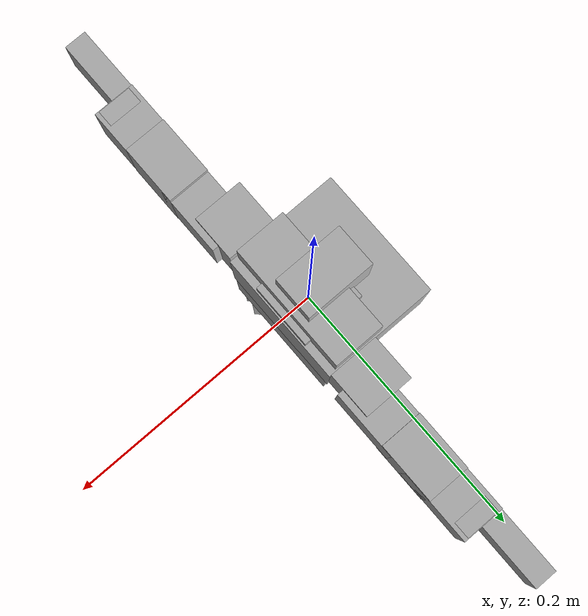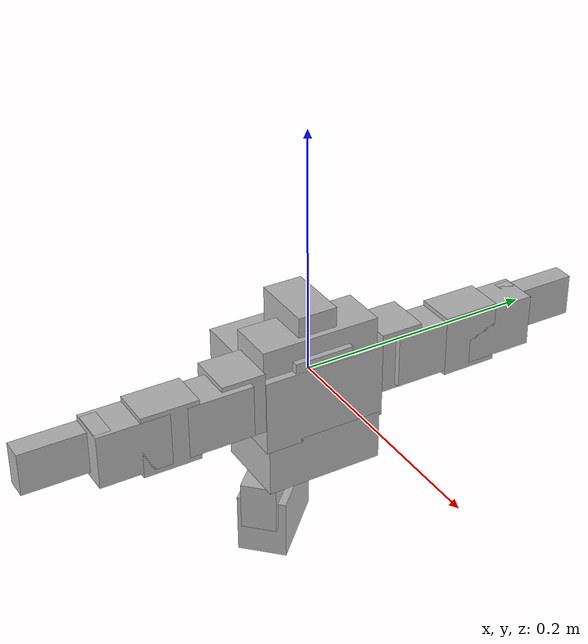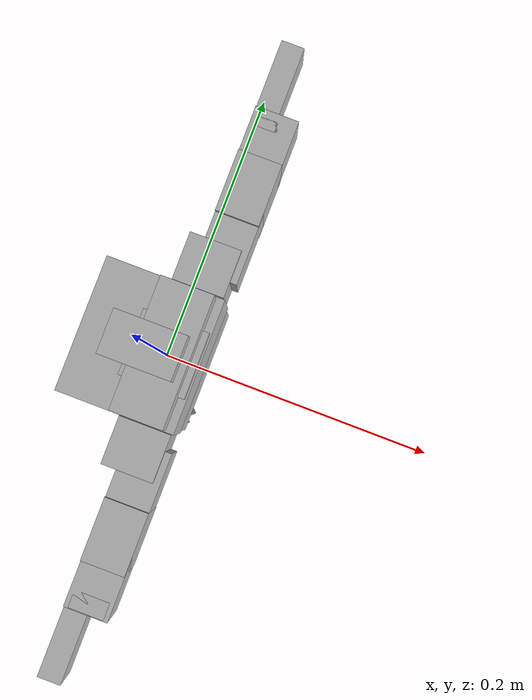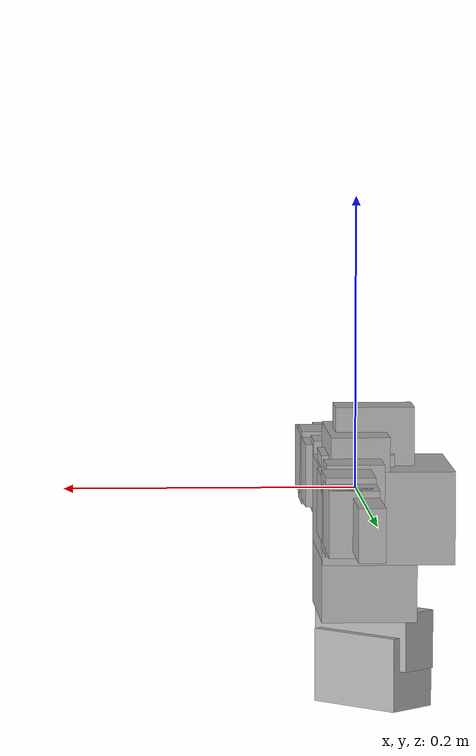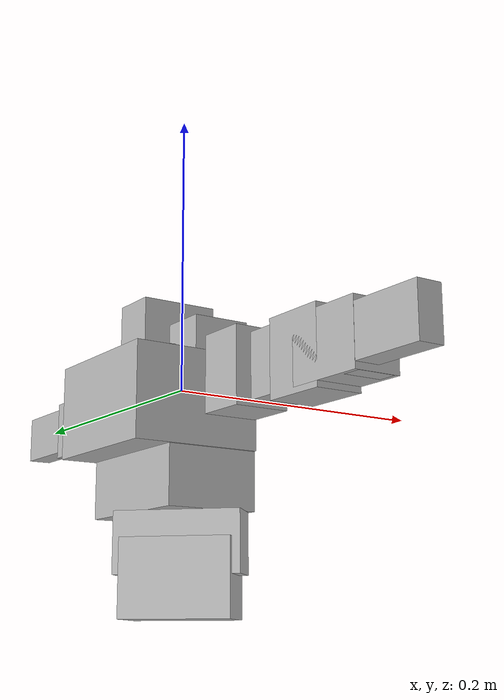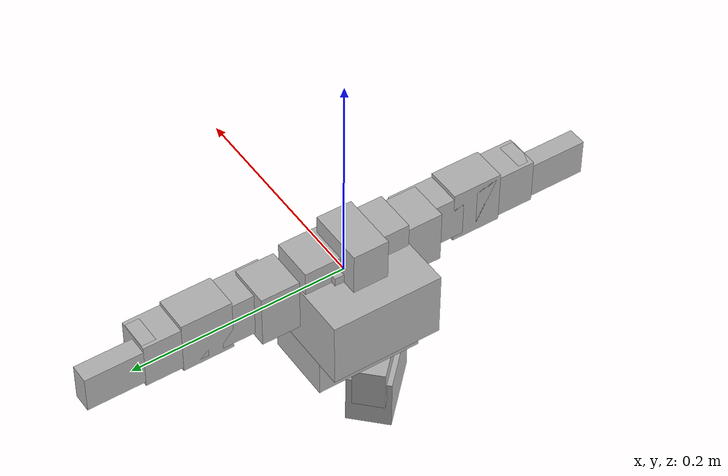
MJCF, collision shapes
<mujoco model="typea">
  <compiler angle="radian" meshdir="assets" coordinate="local"/>

  <asset>
    <mesh name="8b120736_BPF-CHEST-F_FCD-Conv_BDR-Col" file="8b120736_BPF-CHEST-F_FCD-Conv_BDR-Col.stl" scale="0.001 0.001 0.001" />
    <mesh name="94afeb60_BPF-CHEST-B_FCD-Conv_BDR-Col" file="94afeb60_BPF-CHEST-B_FCD-Conv_BDR-Col.stl" scale="0.001 0.001 0.001" />
    <mesh name="df1d2ef7_CM-5_FCD-Conv_BDR-Col" file="df1d2ef7_CM-5_FCD-Conv_BDR-Col.stl" scale="0.001 0.001 0.001" />
    <mesh name="2c813877_AX-S1_FCD-Conv_BDR-Col" file="2c813877_AX-S1_FCD-Conv_BDR-Col.stl" scale="0.001 0.001 0.001" />
    <mesh name="3c0b5d99_AX-12_FCD-Conv_BDR-Col" file="3c0b5d99_AX-12_FCD-Conv_BDR-Col.stl" scale="0.001 0.001 0.001" />
    <mesh name="d8612dc6_FP04-F3_FCD-Conv_BDR-Col" file="d8612dc6_FP04-F3_FCD-Conv_BDR-Col.stl" scale="0.001 0.001 0.001" />
    <mesh name="11c5acbd_FP04-F1_FCD-Conv_BDR-Col" file="11c5acbd_FP04-F1_FCD-Conv_BDR-Col.stl" scale="0.001 0.001 0.001" />
    <mesh name="5f501081_BPF-BU_FCD-Conv_BDR-Col" file="5f501081_BPF-BU_FCD-Conv_BDR-Col.stl" scale="0.001 0.001 0.001" />
    <mesh name="c9bc5e6a_BPF-WA_FCD-Conv_BDR-Col" file="c9bc5e6a_BPF-WA_FCD-Conv_BDR-Col.stl" scale="0.001 0.001 0.001" />
    <mesh name="b04d8bdf_FP04-F2_FCD-Conv_BDR-Col" file="b04d8bdf_FP04-F2_FCD-Conv_BDR-Col.stl" scale="0.001 0.001 0.001" />
    <mesh name="abc2df66_FP04-F11_FCD-Conv_BDR-Col" file="abc2df66_FP04-F11_FCD-Conv_BDR-Col.stl" scale="0.001 0.001 0.001" />
    <mesh name="df207a8e_FP04-F5_FCD-Conv_BDR-Col" file="df207a8e_FP04-F5_FCD-Conv_BDR-Col.stl" scale="0.001 0.001 0.001" />
    <mesh name="c44f3233_FP04-F6_FCD-Conv_BDR-Col" file="c44f3233_FP04-F6_FCD-Conv_BDR-Col.stl" scale="0.001 0.001 0.001" />
    <mesh name="4aa1180e_FP04-F7_FCD-Conv_BDR-Col" file="4aa1180e_FP04-F7_FCD-Conv_BDR-Col.stl" scale="0.001 0.001 0.001" />
    <mesh name="9856e80b_FP04-F4_FCD-Conv_BDR-Col" file="9856e80b_FP04-F4_FCD-Conv_BDR-Col.stl" scale="0.001 0.001 0.001" />
    <mesh name="bc9e07fb_FP04-F12_FCD-Conv_BDR-Col" file="bc9e07fb_FP04-F12_FCD-Conv_BDR-Col.stl" scale="0.001 0.001 0.001" />
    <mesh name="916d31db_Bioloid_CUERPO_vis_4" file="916d31db_Bioloid_CUERPO_vis_4.stl" scale="1.0 1.0 1.0" />
    <mesh name="fe3dec6d_Bioloid_CUERPO_vis_2" file="fe3dec6d_Bioloid_CUERPO_vis_2.stl" />
  </asset>

  <default>
    <mesh scale="0.001 0.001 0.001" />
    <geom rgba="0.7 0.7 0.7 1.0" />
    <joint damping="0.5" frictionloss="0.03" />
    <default class="visual">
      <geom contype="0" conaffinity="0" group="1" />
    </default>
  </default>

  <worldbody>
    <!-- Torso with visual meshes -->
    <geom mesh="8b120736_BPF-CHEST-F_FCD-Conv_BDR-Col" type="mesh" pos="0 0 0" euler="1.5708 0 1.5708" class="visual" />
    <geom mesh="94afeb60_BPF-CHEST-B_FCD-Conv_BDR-Col" type="mesh" pos="0 0 0" euler="1.5708 0 1.5708" class="visual" />
    <geom mesh="df1d2ef7_CM-5_FCD-Conv_BDR-Col" type="mesh" pos="-0.032 0 -0.015" euler="0 3.1416 1.5708" class="visual" />
    <geom mesh="2c813877_AX-S1_FCD-Conv_BDR-Col" type="mesh" pos="0 0 0.025" euler="-1.5708 0 -1.5708" class="visual" />

    <!-- Collision geometries (kept for physics) -->
    <geom name="head_collision" size="0.027 0.0165 0.022" pos="-0.0122 0 0.035" type="box"/>
    <geom name="torso_collision_top" size="0.04525 0.0515 0.03175" pos="-0.019 0 -0.015" type="box"/>
    <geom name="torso_collision_bottom" size="0.0325 0.0495 0.0215" pos="-0.00625 0 -0.0648" type="box"/>
    <geom size="0.025 0.025 0.025" type="box"/>
    <geom name="head2_collision" size="0.02 0.05 0.04" type="box"/>
    <geom size="0.005 0.005 0.005" pos="0 0 0.05" type="box" rgba="0 1 0 1"/>

    <body name="r_shoulder_swing_link" pos="0 -0.032 0" quat="0.5 0.5 0.5 -0.5">
      <inertial pos="0 0.006 0.0375" quat="0 0.707107 0 0.707107" mass="0.01" diaginertia="3.52e-06 3.33e-06 2.35e-06"/>
      <joint name="r_shoulder_swing_joint" pos="0 0 0" axis="0 0 1" range="-1 1.5708" actuatorfrcrange="-2.8 2.8"/>

      <!-- Visual mesh for shoulder -->
      <geom mesh="11c5acbd_FP04-F1_FCD-Conv_BDR-Col" type="mesh" pos="0 0.014 0.044" euler="0 3.1416 3.1416" class="visual" />

      <!-- Collision geometry -->
      <geom name="r_shoulder_collision" size="0.026 0.0195 0.018" pos="0 0.006 0.0375" type="box"/>

      <body name="r_upper_arm_link" pos="0 0.014 0.044" quat="0.707107 0 -0.707107 0">
        <inertial pos="0.03536 0 0" quat="0.5 0.5 0.5 0.5" mass="0.07" diaginertia="5.746e-05 5.024e-05 1.99e-05"/>
        <joint name="r_shoulder_lateral_joint" pos="0 0 0" axis="0 0 -1" range="-1.5 1.5" actuatorfrcrange="-2.8 2.8"/>

        <!-- Visual meshes for upper arm -->
        <geom mesh="3c0b5d99_AX-12_FCD-Conv_BDR-Col" type="mesh" pos="0 0 0" euler="0 0 1.5708" class="visual" />
        <geom mesh="5f501081_BPF-BU_FCD-Conv_BDR-Col" type="mesh" pos="0 0 -0.0185" euler="-1.5708 0 1.5708" class="visual" />
        <geom mesh="c9bc5e6a_BPF-WA_FCD-Conv_BDR-Col" type="mesh" pos="0 0 -0.019" euler="-1.5708 0 1.5708" class="visual" />
        <geom mesh="d8612dc6_FP04-F3_FCD-Conv_BDR-Col" type="mesh" pos="0.0415 0 0" euler="0 0 1.5708" class="visual" />
        <geom mesh="b04d8bdf_FP04-F2_FCD-Conv_BDR-Col" type="mesh" pos="0.0675 0 0" euler="-1.5708 1.5708 1.5708" class="visual" />

        <!-- Collision geometries -->
        <geom name="r_upper arm_collision_proximal" size="0.027 0.0165 0.022" pos="0.0148 0 0" type="box"/>
        <geom name="r_upper arm_collision_distal" size="0.0235 0.0165 0.026" pos="0.0555 0 0" type="box"/>

        <body name="r_lower_arm_link" pos="0.0675 0 0">
          <inertial pos="0.00554868 -0.0067729 -0.000515957" quat="0.479854 0.473689 0.522751 0.521624" mass="0.068" diaginertia="7.12121e-05 6.73943e-05 1.78853e-05"/>
          <joint name="r_elbow_joint" pos="0 0 0" axis="0 0 -1" range="-1.77 1.77" actuatorfrcrange="-2.8 2.8"/>

          <!-- Visual meshes for lower arm -->
          <geom mesh="3c0b5d99_AX-12_FCD-Conv_BDR-Col" type="mesh" pos="0 0 0" euler="0 0 1.5708" class="visual" />
          <geom mesh="5f501081_BPF-BU_FCD-Conv_BDR-Col" type="mesh" pos="0 0 -0.0185" euler="-1.5708 0 1.5708" class="visual" />
          <geom mesh="c9bc5e6a_BPF-WA_FCD-Conv_BDR-Col" type="mesh" pos="0 0 -0.019" euler="-1.5708 0 1.5708" class="visual" />
          <geom mesh="d8612dc6_FP04-F3_FCD-Conv_BDR-Col" type="mesh" pos="0.0415 0 0" euler="0 0 1.5708" class="visual" />
          <geom mesh="abc2df66_FP04-F11_FCD-Conv_BDR-Col" type="mesh" pos="0.0415 0 0" euler="3.1416 -1.5708 0" class="visual" />

          <!-- Collision geometries -->
          <geom name="r_lower_arm_collision" size="0.029 0.0165 0.022" pos="0.017 0 0" type="box"/>
          <geom name="r_palm_collision" size="0.00655 0.01325 0.022" pos="0.039 0 0" type="box"/>
          <geom name="r_fingers_collision" size="0.02875 0.00875 0.0175" pos="0.0701 -0.0077 0" type="box"/>
        </body>
      </body>
    </body>

    <body name="l_shoulder_swing_link" pos="0 0.032 0" quat="0.5 -0.5 -0.5 -0.5">
      <inertial pos="0 0.006 0.0375" quat="0 0.707107 0 0.707107" mass="0.01" diaginertia="3.52e-06 3.33e-06 2.35e-06"/>
      <joint name="l_shoulder_swing_joint" pos="0 0 0" axis="0 0 1" range="-1 1.5708" actuatorfrcrange="-2.8 2.8"/>

      <!-- Visual mesh for left shoulder -->
      <geom mesh="11c5acbd_FP04-F1_FCD-Conv_BDR-Col" type="mesh" pos="0 0.014 0.044" euler="0 3.1416 3.1416" class="visual" />

      <geom name="l_shoulder_collision" size="0.026 0.0195 0.018" pos="0 0.006 0.0375" type="box"/>

      <body name="l_upper_arm_link" pos="0 0.014 0.044" quat="0.707107 0 -0.707107 0">
        <inertial pos="0.03536 0 0" quat="0.5 0.5 0.5 0.5" mass="0.07" diaginertia="5.746e-05 5.024e-05 1.99e-05"/>
        <joint name="l_shoulder_lateral_joint" pos="0 0 0" axis="0 0 1" range="-1.5 1.5" actuatorfrcrange="-2.8 2.8"/>

        <!-- Visual meshes for left upper arm -->
        <geom mesh="3c0b5d99_AX-12_FCD-Conv_BDR-Col" type="mesh" pos="0 0 0" euler="3.1416 0 -1.5708" class="visual" />
        <geom mesh="5f501081_BPF-BU_FCD-Conv_BDR-Col" type="mesh" pos="0 0 0.0185" euler="1.5708 0 1.5708" class="visual" />
        <geom mesh="c9bc5e6a_BPF-WA_FCD-Conv_BDR-Col" type="mesh" pos="0 0 0.019" euler="1.5708 0 1.5708" class="visual" />
        <geom mesh="d8612dc6_FP04-F3_FCD-Conv_BDR-Col" type="mesh" pos="0.0415 0 0" euler="3.1416 0 -1.5708" class="visual" />
        <geom mesh="b04d8bdf_FP04-F2_FCD-Conv_BDR-Col" type="mesh" pos="0.0675 0 0" euler="1.5708 1.5708 -1.5708" class="visual" />

        <geom name="l_upper arm_collision_proximal" size="0.027 0.0165 0.022" pos="0.0148 0 0" type="box"/>
        <geom name="l_upper arm_collision_distal" size="0.0235 0.0165 0.026" pos="0.0555 0 0" type="box"/>

        <body name="l_lower_arm_link" pos="0.0675 0 0">
          <inertial pos="0.00641783 0.00557279 -0.000592108" quat="0.519286 0.520103 0.476239 0.482733" mass="0.068" diaginertia="7.03478e-05 6.6411e-05 1.77672e-05"/>
          <joint name="l_elbow_joint" pos="0 0 0" axis="0 0 1" range="-1.77 1.77" actuatorfrcrange="-2.8 2.8"/>

          <!-- Visual meshes for left lower arm -->
          <geom mesh="3c0b5d99_AX-12_FCD-Conv_BDR-Col" type="mesh" pos="0 0 0" euler="3.1416 0 -1.5708" class="visual" />
          <geom mesh="5f501081_BPF-BU_FCD-Conv_BDR-Col" type="mesh" pos="0 0 0.0185" euler="1.5708 0 1.5708" class="visual" />
          <geom mesh="c9bc5e6a_BPF-WA_FCD-Conv_BDR-Col" type="mesh" pos="0 0 0.019" euler="1.5708 0 1.5708" class="visual" />
          <geom mesh="d8612dc6_FP04-F3_FCD-Conv_BDR-Col" type="mesh" pos="0.0415 0 0" euler="3.1416 0 -1.5708" class="visual" />
          <geom mesh="abc2df66_FP04-F11_FCD-Conv_BDR-Col" type="mesh" pos="0.0415 0 0" euler="0 -1.5708 3.1416" class="visual" />

          <geom name="l_lower_arm_collision" size="0.029 0.0165 0.022" pos="0.017 0 0" type="box"/>
          <geom name="l_palm_collision" size="0.00655 0.01325 0.022" pos="0.039 0 0" type="box"/>
          <geom name="l_fingers_collision" size="0.02875 0.00875 0.0175" pos="0.0701 -0.0077 0" type="box"/>
        </body>
      </body>
    </body>

    <!-- Continue with hip and leg sections... -->
    <body name="r_hip_twist_link" pos="0 -0.0385 -0.0655" quat="0 -0.383885 0.923381 0">
      <inertial pos="0.0008 0.02 0.041" quat="0.707107 0.707107 0 0" mass="0.016" diaginertia="1.1372e-05 1.0307e-05 3.3083e-06"/>
      <joint name="r_hip_twist_joint" pos="0 0 0" axis="0 0 1" range="-0.8 0.8" actuatorfrcrange="-10 10"/>

      <!-- Visual mesh for hip -->
      <geom mesh="df207a8e_FP04-F5_FCD-Conv_BDR-Col" type="mesh" pos="0 0.02 0.05" euler="3.1416 0 3.1416" class="visual" />

      <geom name="r_hip_twist_collision" size="0.0145 0.0415 0.02025" pos="0.0008 0.02 0.041" type="box"/>

      <body name="r_hip_lateral_link" pos="0 0 0.05" quat="0.707107 -0.707107 0 0">
        <inertial pos="0 -0.0135 0.02" mass="0.12" diaginertia="7.79941e-05 6.79841e-05 4.20099e-05"/>
        <joint name="r_hip_lateral_joint" pos="0 0 0" axis="0 0 -1" range="-0.8 0.8" actuatorfrcrange="-10 10"/>

        <!-- Multiple visual meshes for hip lateral -->
        <geom mesh="3c0b5d99_AX-12_FCD-Conv_BDR-Col" type="mesh" pos="0 0 0.0353" euler="0 0 0" class="visual" />
        <geom mesh="c44f3233_FP04-F6_FCD-Conv_BDR-Col" type="mesh" pos="-0.019 -0.0145 0.0513" euler="0 -1.5708 -1.5708" class="visual" />
        <geom mesh="c44f3233_FP04-F6_FCD-Conv_BDR-Col" type="mesh" pos="0.019 -0.0145 0.0513" euler="0 -1.5708 1.5708" class="visual" />
        <geom mesh="5f501081_BPF-BU_FCD-Conv_BDR-Col" type="mesh" pos="0 0 -0.0147" euler="-1.5708 0 0" class="visual" />
        <geom mesh="4aa1180e_FP04-F7_FCD-Conv_BDR-Col" type="mesh" pos="0 -0.0145 -0.0157" euler="1.5708 0 1.5708" class="visual" />

        <geom name="r_hip_lateral_collision" size="0.02 0.0255 0.03605" pos="0 -0.0135 0.02" type="box"/>

        <!-- Continue with remaining leg structure... -->
        <!-- ... (complete leg structure would continue here) ... -->
      </body>
    </body>

    <!-- Add similar structure for left leg -->

    <!-- Head links with visual meshes -->
    <geom mesh="916d31db_Bioloid_CUERPO_vis_4" type="mesh" pos="0 0 0" euler="0 0 0" class="visual" />
    <geom mesh="fe3dec6d_Bioloid_CUERPO_vis_2" type="mesh" pos="0 0 0" euler="0 0 0" class="visual" />

  </worldbody>

  <actuator>
    <position name="r_shoulder_swing_joint_act" joint="r_shoulder_swing_joint" />
    <position name="l_shoulder_swing_joint_act" joint="l_shoulder_swing_joint" />
    <position name="r_shoulder_lateral_joint_act" joint="r_shoulder_lateral_joint" />
    <position name="l_shoulder_lateral_joint_act" joint="l_shoulder_lateral_joint" />
    <position name="r_elbow_joint_act" joint="r_elbow_joint" />
    <position name="l_elbow_joint_act" joint="l_elbow_joint" />
    <position name="r_hip_twist_joint_act" joint="r_hip_twist_joint" />
    <position name="l_hip_twist_joint_act" joint="l_hip_twist_joint" />
    <position name="r_hip_lateral_joint_act" joint="r_hip_lateral_joint" />
    <position name="l_hip_lateral_joint_act" joint="l_hip_lateral_joint" />
    <position name="r_hip_swing_joint_act" joint="r_hip_swing_joint" />
    <position name="l_hip_swing_joint_act" joint="l_hip_swing_joint" />
    <position name="r_knee_joint_act" joint="r_knee_joint" />
    <position name="l_knee_joint_act" joint="l_knee_joint" />
    <position name="r_ankle_swing_joint_act" joint="r_ankle_swing_joint" />
    <position name="l_ankle_swing_joint_act" joint="l_ankle_swing_joint" />
    <position name="r_ankle_lateral_joint_act" joint="r_ankle_lateral_joint" />
    <position name="l_ankle_lateral_joint_act" joint="l_ankle_lateral_joint" />
  </actuator>

</mujoco>
